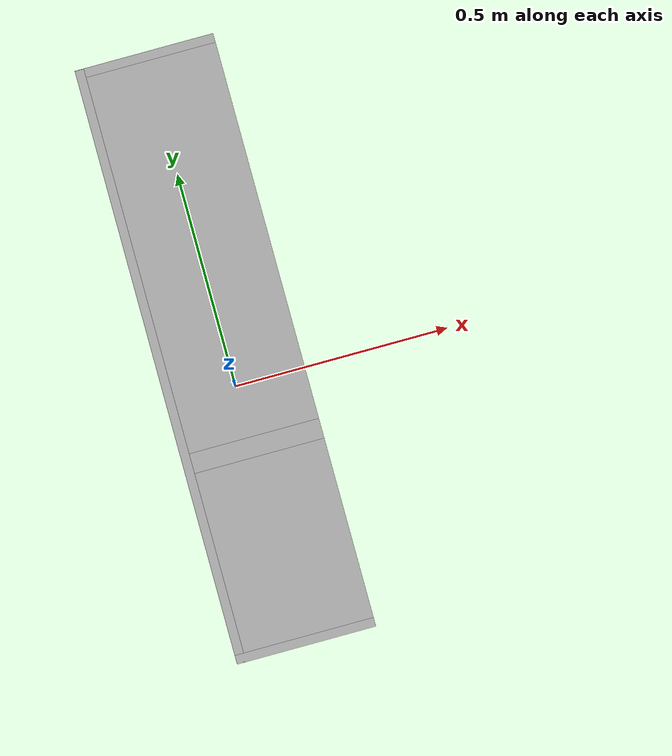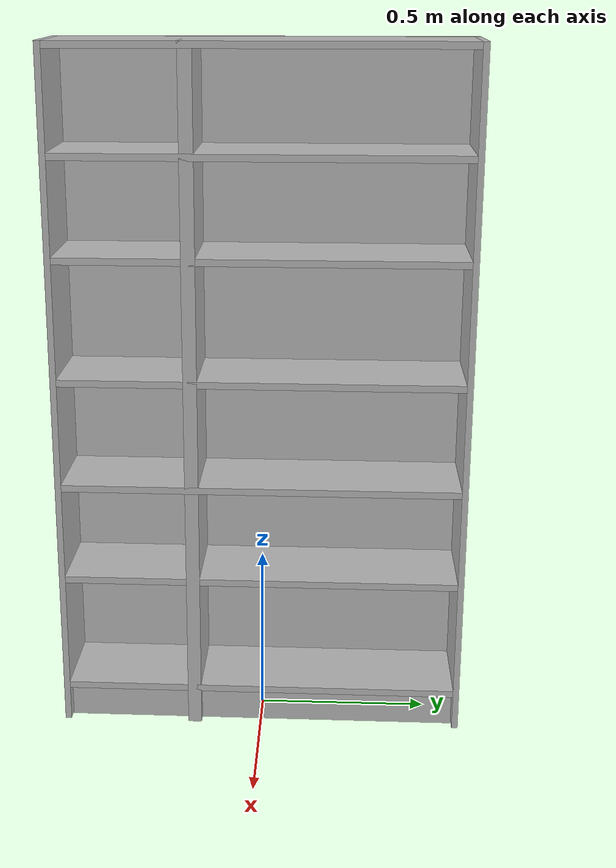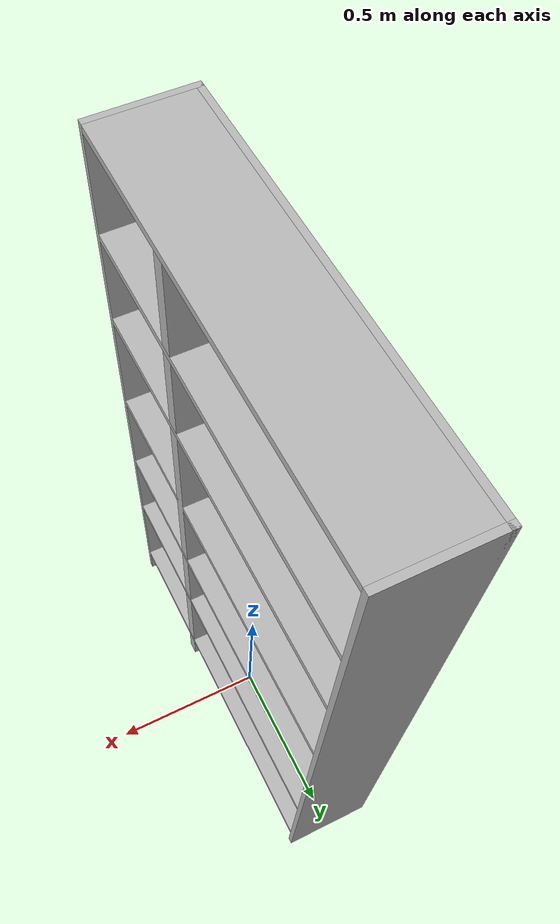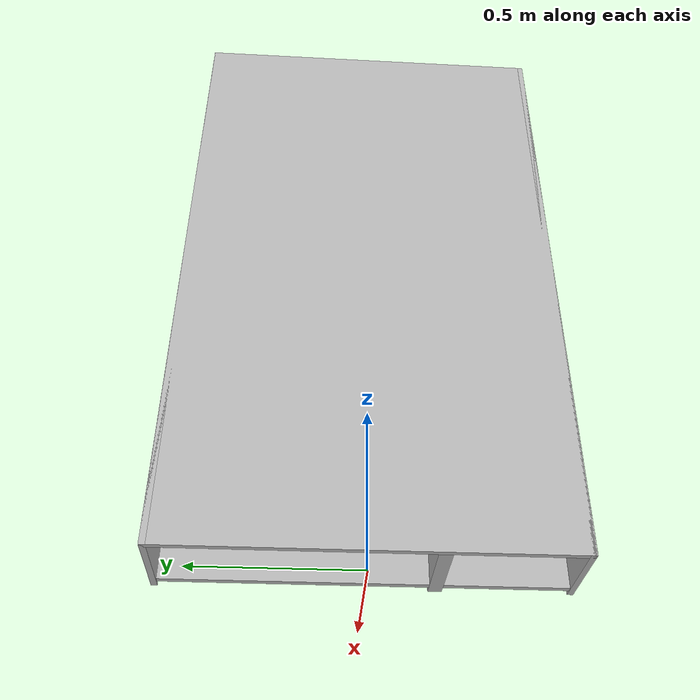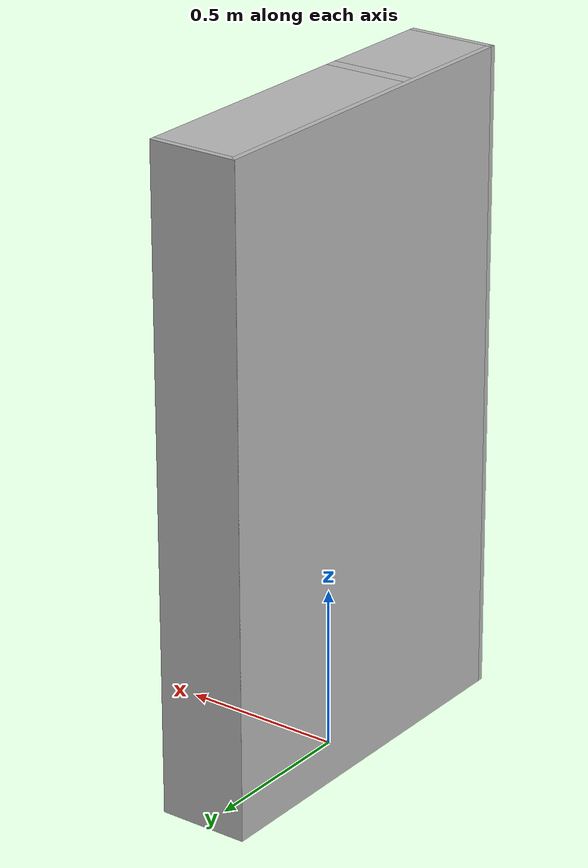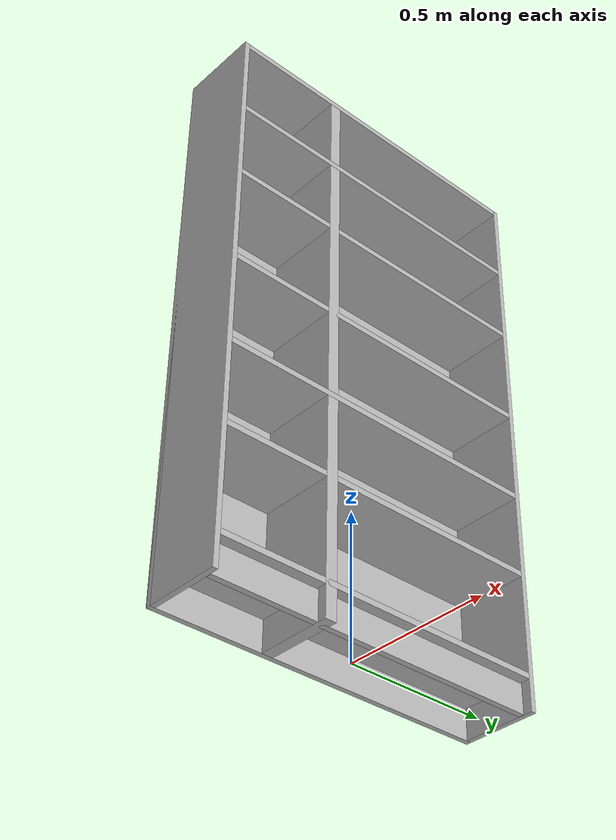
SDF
<?xml version="1.0" ?>
<sdf version="1.6">
  <model name="rwc2022/pantry">
    <static>true</static>
    <link name="1_link">
      <collision name="1_col">
        <geometry>
          <box>
            <size>0.28 0.018 2.02</size>
          </box>
        </geometry>
      </collision>
      <visual name="1_vis">
        <geometry>
          <box>
            <size>0.28 0.018 2.02</size>
          </box>
        </geometry>
      </visual>
      <pose>0.0 -0.591 1.01 0 0 0</pose>
    </link>
    <link name="2_link">
      <collision name="2_col">
        <geometry>
          <box>
            <size>0.28 0.018 2.02</size>
          </box>
        </geometry>
      </collision>
      <visual name="2_vis">
        <geometry>
          <box>
            <size>0.28 0.018 2.02</size>
          </box>
        </geometry>
      </visual>
      <pose>0.0 0.591 1.01 0 0 0</pose>
    </link>
    <link name="3_link">
      <collision name="3_col">
        <geometry>
          <box>
            <size>0.018 1.2 2.02</size>
          </box>
        </geometry>
      </collision>
      <visual name="3_vis">
        <geometry>
          <box>
            <size>0.018 1.2 2.02</size>
          </box>
        </geometry>
      </visual>
      <pose>-0.131 0.0 1.01 0 0 0</pose>
    </link>
    <link name="4_link">
      <collision name="4_col">
        <geometry>
          <box>
            <size>0.262 1.164 0.02</size>
          </box>
        </geometry>
      </collision>
      <visual name="4_vis">
        <geometry>
          <box>
            <size>0.262 1.164 0.02</size>
          </box>
        </geometry>
      </visual>
      <pose>0.009 0.0 2.01 0 0 0</pose>
    </link>
    <link name="5_link">
      <collision name="5_col">
        <geometry>
          <box>
            <size>0.262 1.164 0.02</size>
          </box>
        </geometry>
      </collision>
      <visual name="5_vis">
        <geometry>
          <box>
            <size>0.262 1.164 0.02</size>
          </box>
        </geometry>
      </visual>
      <pose>0.009 0.0 1.715 0 0 0</pose>
    </link>
    <link name="6_link">
      <collision name="6_col">
        <geometry>
          <box>
            <size>0.262 1.164 0.02</size>
          </box>
        </geometry>
      </collision>
      <visual name="6_vis">
        <geometry>
          <box>
            <size>0.262 1.164 0.02</size>
          </box>
        </geometry>
      </visual>
      <pose>0.009 0.0 1.428 0 0 0</pose>
    </link>
    <link name="7_link">
      <collision name="7_col">
        <geometry>
          <box>
            <size>0.262 1.164 0.02</size>
          </box>
        </geometry>
      </collision>
      <visual name="7_vis">
        <geometry>
          <box>
            <size>0.262 1.164 0.02</size>
          </box>
        </geometry>
      </visual>
      <pose>0.009 0.0 1.075 0 0 0</pose>
    </link>
    <link name="8_link">
      <collision name="8_col">
        <geometry>
          <box>
            <size>0.262 1.164 0.02</size>
          </box>
        </geometry>
      </collision>
      <visual name="8_vis">
        <geometry>
          <box>
            <size>0.262 1.164 0.02</size>
          </box>
        </geometry>
      </visual>
      <pose>0.009 0.0 0.755 0 0 0</pose>
    </link>
    <link name="9_link">
      <collision name="9_col">
        <geometry>
          <box>
            <size>0.262 1.164 0.02</size>
          </box>
        </geometry>
      </collision>
      <visual name="9_vis">
        <geometry>
          <box>
            <size>0.262 1.164 0.02</size>
          </box>
        </geometry>
      </visual>
      <pose>0.009 0.0 0.465 0 0 0</pose>
    </link>
    <link name="10_link">
      <collision name="10_col">
        <geometry>
          <box>
            <size>0.262 1.164 0.02</size>
          </box>
        </geometry>
      </collision>
      <visual name="10_vis">
        <geometry>
          <box>
            <size>0.262 1.164 0.02</size>
          </box>
        </geometry>
      </visual>
      <pose>0.009 0.0 0.115 0 0 0</pose>
    </link>
    <link name="11_link">
      <collision name="11_col">
        <geometry>
          <box>
            <size>0.262 0.04 2.02</size>
          </box>
        </geometry>
      </collision>
      <visual name="11_vis">
        <geometry>
          <box>
            <size>0.262 0.04 2.02</size>
          </box>
        </geometry>
      </visual>
      <pose>0.009 -0.2 1.01 0 0 0</pose>
    </link>
    <link name="12_link">
      <collision name="12_col">
        <geometry>
          <box>
            <size>0.02 1.16 0.1</size>
          </box>
        </geometry>
      </collision>
      <visual name="12_vis">
        <geometry>
          <box>
            <size>0.02 1.16 0.1</size>
          </box>
        </geometry>
      </visual>
      <pose>0.10 0.0 0.05 0 0 0</pose>
    </link>
    <link name="in_front_of">
      <virtual_volume name="in_front_of_vv">
        <geometry>
          <box>
            <size>0.2 0.5 0.01</size>
          </box>
        </geometry>
        <pose>0.64 0.0 0.005 0 0 0</pose>
      </virtual_volume>
    </link>
    <link name="in_front_of_l">
      <virtual_volume name="in_front_of_l_vv">
        <geometry>
          <box>
            <size>0.2 0.5 0.01</size>
          </box>
        </geometry>
        <pose>0.64 0.0 0.005 0 0 0</pose>
      </virtual_volume>
    </link>
    <link name="in_front_of_r">
      <virtual_volume name="in_front_of_r_vv">
        <geometry>
          <box>
            <size>0.2 0.5 0.01</size>
          </box>
        </geometry>
        <pose>0.64 0.0 0.005 0 0 0</pose>
      </virtual_volume>
    </link>
    <link name="shelf1_r">
      <virtual_volume name="shelf1_r_vv">
        <geometry>
          <box>
            <size>0.26 0.62 0.15</size>
          </box>
        </geometry>
        <pose>0.0 0.2 0.21 0 0 0</pose>
      </virtual_volume>
    </link>
    <link name="shelf2_r">
      <virtual_volume name="shelf2_r_vv">
        <geometry>
          <box>
            <size>0.26 0.62 0.21</size>
          </box>
        </geometry>
        <pose>0.0 0.2 0.61 0 0 0</pose>
      </virtual_volume>
    </link>
    <link name="shelf3_r">
      <virtual_volume name="shelf3_r_vv">
        <geometry>
          <box>
            <size>0.26 0.62 0.22</size>
          </box>
        </geometry>
        <pose>0.0 0.2 0.9 0 0 0</pose>
      </virtual_volume>
    </link>
     <link name="shelf4_r">
      <virtual_volume name="shelf4_r_vv">
        <geometry>
          <box>
            <size>0.26 0.62 0.26</size>
          </box>
        </geometry>
        <pose>0.0 0.2 1.25 0 0 0</pose>
      </virtual_volume>
    </link>
     <link name="shelf5_r">
      <virtual_volume name="shelf5_r_vv">
        <geometry>
          <box>
            <size>0.26 0.62 0.15</size>
          </box>
        </geometry>
        <pose>0.0 0.2 1.53 0 0 0</pose>
      </virtual_volume>
    </link>
     <link name="shelf1_l">
      <virtual_volume name="shelf1_l_vv">
        <geometry>
          <box>
            <size>0.26 0.27 0.15</size>
          </box>
        </geometry>
        <pose>0.0 -0.41 0.21 0 0 0</pose>
      </virtual_volume>
    </link>
     <link name="shelf2_l">
      <virtual_volume name="shelf2_l_vv">
        <geometry>
          <box>
            <size>0.26 0.27 0.21</size>
          </box>
        </geometry>
        <pose>0.0 -0.4 0.61 0 0 0</pose>
      </virtual_volume>
    </link>
     <link name="shelf3_l">
      <virtual_volume name="shelf3_l_vv">
        <geometry>
          <box>
            <size>0.26 0.27 0.22</size>
          </box>
        </geometry>
        <pose>0.0 -0.4 0.9 0 0 0</pose>
      </virtual_volume>
    </link>
     <link name="shelf4_l">
      <virtual_volume name="shelf4_l_vv">
        <geometry>
          <box>
            <size>0.26 0.27 0.26</size>
          </box>
        </geometry>
        <pose>0.0 -0.4 1.25 0 0 0</pose>
      </virtual_volume>
    </link>
     <link name="shelf5_l">
      <virtual_volume name="shelf5_l_vv">
        <geometry>
          <box>
            <size>0.26 0.27 0.15</size>
          </box>
        </geometry>
        <pose>0.0 -0.4 1.53 0 0 0</pose>
      </virtual_volume>
    </link>
  </model>
</sdf>
